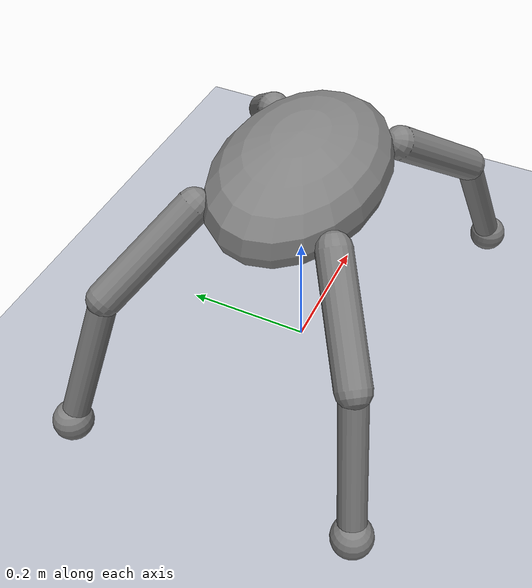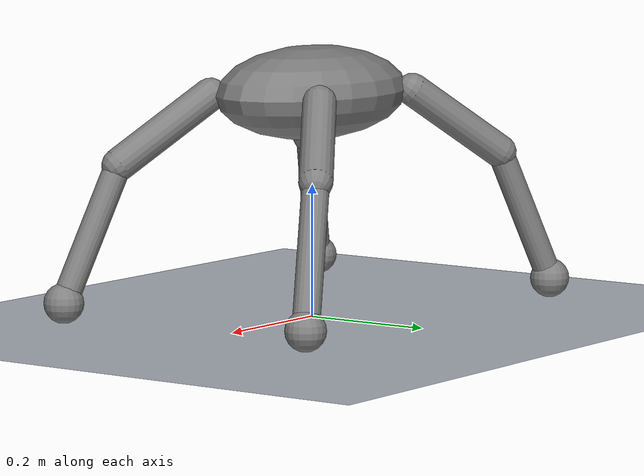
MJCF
<mujoco model="physlab_ant_stand">
  <compiler angle="radian"/>
  <option timestep="0.02" integrator="RK4"/>
  <default>
    <joint damping="0.4" armature="0.01" limited="true"/>
    <geom friction="1.0 0.1 0.1"/>
  </default>
  <worldbody>
    <geom name="floor" type="plane" size="2 2 0.05" rgba="0.7 0.72 0.76 1"/>
    <body name="torso" pos="0 0 0.34">
      <freejoint name="root"/>
      <geom name="torso_geom" type="ellipsoid" size="0.18 0.12 0.07" mass="2.0"/>

      <body name="front_left_upper" pos="0.12 0.10 0">
        <joint name="front_left_hip" type="hinge" axis="0 0 1" range="-0.8 0.8"/>
        <geom type="capsule" fromto="0 0 0 0.12 0.08 -0.10" size="0.025" mass="0.18"/>
        <body name="front_left_lower" pos="0.12 0.08 -0.10">
          <joint name="front_left_knee" type="hinge" axis="0 1 0" range="-1.2 0.5"/>
          <geom type="capsule" fromto="0 0 0 0.08 0.04 -0.20" size="0.02" mass="0.14"/>
          <geom name="front_left_foot" type="sphere" pos="0.08 0.04 -0.20" size="0.03" mass="0.05"/>
        </body>
      </body>

      <body name="front_right_upper" pos="0.12 -0.10 0">
        <joint name="front_right_hip" type="hinge" axis="0 0 1" range="-0.8 0.8"/>
        <geom type="capsule" fromto="0 0 0 0.12 -0.08 -0.10" size="0.025" mass="0.18"/>
        <body name="front_right_lower" pos="0.12 -0.08 -0.10">
          <joint name="front_right_knee" type="hinge" axis="0 1 0" range="-1.2 0.5"/>
          <geom type="capsule" fromto="0 0 0 0.08 -0.04 -0.20" size="0.02" mass="0.14"/>
          <geom name="front_right_foot" type="sphere" pos="0.08 -0.04 -0.20" size="0.03" mass="0.05"/>
        </body>
      </body>

      <body name="rear_left_upper" pos="-0.12 0.10 0">
        <joint name="rear_left_hip" type="hinge" axis="0 0 1" range="-0.8 0.8"/>
        <geom type="capsule" fromto="0 0 0 -0.12 0.08 -0.10" size="0.025" mass="0.18"/>
        <body name="rear_left_lower" pos="-0.12 0.08 -0.10">
          <joint name="rear_left_knee" type="hinge" axis="0 1 0" range="-1.2 0.5"/>
          <geom type="capsule" fromto="0 0 0 -0.08 0.04 -0.20" size="0.02" mass="0.14"/>
          <geom name="rear_left_foot" type="sphere" pos="-0.08 0.04 -0.20" size="0.03" mass="0.05"/>
        </body>
      </body>

      <body name="rear_right_upper" pos="-0.12 -0.10 0">
        <joint name="rear_right_hip" type="hinge" axis="0 0 1" range="-0.8 0.8"/>
        <geom type="capsule" fromto="0 0 0 -0.12 -0.08 -0.10" size="0.025" mass="0.18"/>
        <body name="rear_right_lower" pos="-0.12 -0.08 -0.10">
          <joint name="rear_right_knee" type="hinge" axis="0 1 0" range="-1.2 0.5"/>
          <geom type="capsule" fromto="0 0 0 -0.08 -0.04 -0.20" size="0.02" mass="0.14"/>
          <geom name="rear_right_foot" type="sphere" pos="-0.08 -0.04 -0.20" size="0.03" mass="0.05"/>
        </body>
      </body>
    </body>
  </worldbody>
  <actuator>
    <motor joint="front_left_hip" gear="4" ctrllimited="true" ctrlrange="-1 1"/>
    <motor joint="front_left_knee" gear="4" ctrllimited="true" ctrlrange="-1 1"/>
    <motor joint="front_right_hip" gear="4" ctrllimited="true" ctrlrange="-1 1"/>
    <motor joint="front_right_knee" gear="4" ctrllimited="true" ctrlrange="-1 1"/>
    <motor joint="rear_left_hip" gear="4" ctrllimited="true" ctrlrange="-1 1"/>
    <motor joint="rear_left_knee" gear="4" ctrllimited="true" ctrlrange="-1 1"/>
    <motor joint="rear_right_hip" gear="4" ctrllimited="true" ctrlrange="-1 1"/>
    <motor joint="rear_right_knee" gear="4" ctrllimited="true" ctrlrange="-1 1"/>
  </actuator>
</mujoco>
